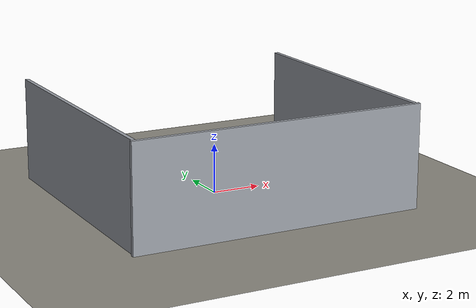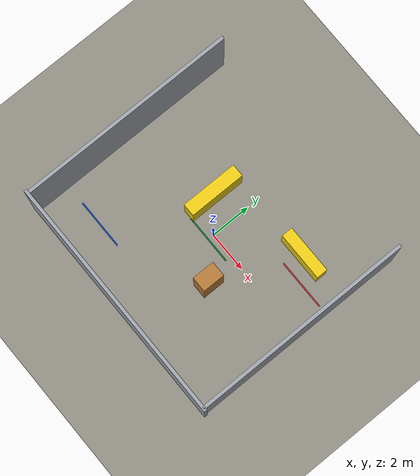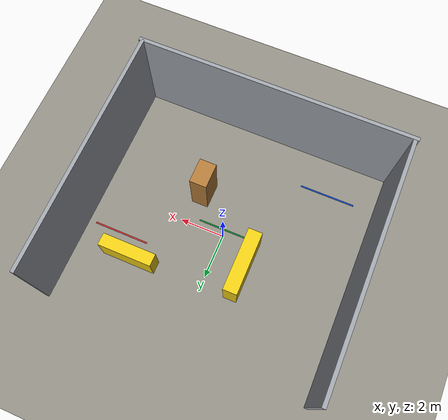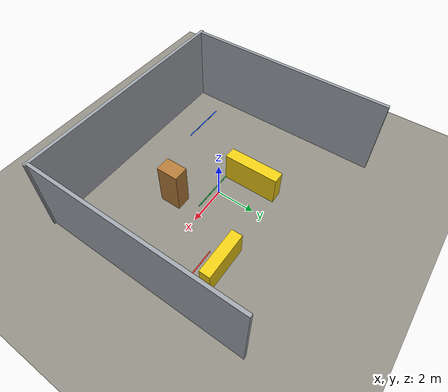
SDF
<?xml version="1.0" ?>
<sdf version="1.8">
  <world name="warehouse_multicamera_extension">
    <physics name="default_physics" type="ode">
      <max_step_size>0.001</max_step_size>
      <real_time_factor>1.0</real_time_factor>
      <real_time_update_rate>1000</real_time_update_rate>
    </physics>
    <plugin name="gz::sim::systems::Physics" filename="gz-sim-physics-system"/>
    <plugin name="gz::sim::systems::UserCommands" filename="gz-sim-user-commands-system"/>
    <plugin name="gz::sim::systems::SceneBroadcaster" filename="gz-sim-scene-broadcaster-system"/>
    <plugin name="gz::sim::systems::Contact" filename="gz-sim-contact-system"/>
    <plugin name="gz::sim::systems::Sensors" filename="gz-sim-sensors-system">
      <render_engine>ogre2</render_engine>
    </plugin>
    <gravity>0 0 -9.81</gravity>
    <scene>
      <ambient>0.58 0.58 0.58 1</ambient>
      <background>0.70 0.72 0.74 1</background>
      <shadows>true</shadows>
    </scene>

    <model name="ground_plane">
      <static>true</static>
      <link name="link">
        <collision name="collision">
          <geometry><plane><normal>0 0 1</normal><size>12.0 10.5</size></plane></geometry>
        </collision>
        <visual name="visual">
          <geometry><plane><normal>0 0 1</normal><size>12.0 10.5</size></plane></geometry>
          <material><ambient>0.56 0.55 0.51 1</ambient><diffuse>0.56 0.55 0.51 1</diffuse></material>
        </visual>
      </link>
    </model>

    <model name="warehouse_walls">
      <static>true</static>
      <link name="wall_south">
        <pose>0 -5.35 2.1 0 0 0</pose>
        <collision name="collision"><geometry><box><size>12.0 0.16 4.2</size></box></geometry></collision>
        <sensor name="contact" type="contact"><contact><collision>collision</collision></contact><update_rate>60</update_rate></sensor>
        <visual name="visual"><geometry><box><size>12.0 0.16 4.2</size></box></geometry><material><ambient>0.62 0.64 0.67 1</ambient><diffuse>0.62 0.64 0.67 1</diffuse></material></visual>
      </link>
      <link name="wall_east">
        <pose>5.85 0 2.1 0 0 0</pose>
        <collision name="collision"><geometry><box><size>0.16 10.7 4.2</size></box></geometry></collision>
        <sensor name="contact" type="contact"><contact><collision>collision</collision></contact><update_rate>60</update_rate></sensor>
        <visual name="visual"><geometry><box><size>0.16 10.7 4.2</size></box></geometry><material><ambient>0.62 0.64 0.67 1</ambient><diffuse>0.62 0.64 0.67 1</diffuse></material></visual>
      </link>
      <link name="wall_west">
        <pose>-5.85 0 2.1 0 0 0</pose>
        <collision name="collision"><geometry><box><size>0.16 10.7 4.2</size></box></geometry></collision>
        <sensor name="contact" type="contact"><contact><collision>collision</collision></contact><update_rate>60</update_rate></sensor>
        <visual name="visual"><geometry><box><size>0.16 10.7 4.2</size></box></geometry><material><ambient>0.62 0.64 0.67 1</ambient><diffuse>0.62 0.64 0.67 1</diffuse></material></visual>
      </link>
    </model>

    <model name="extension_occluders">
      <static>true</static>
      <link name="south_blind_stack_for_camera_a">
        <pose>1.55 -1.55 1.15 0 0 0</pose>
        <collision name="collision"><geometry><box><size>0.75 1.10 2.30</size></box></geometry></collision>
        <sensor name="contact" type="contact"><contact><collision>collision</collision></contact><update_rate>60</update_rate></sensor>
        <visual name="visual"><geometry><box><size>0.75 1.10 2.30</size></box></geometry><material><ambient>0.70 0.48 0.22 1</ambient><diffuse>0.70 0.48 0.22 1</diffuse></material></visual>
      </link>
      <link name="central_handover_rack">
        <pose>-1.35 1.10 0.80 0 0 0</pose>
        <collision name="collision"><geometry><box><size>0.62 2.80 1.60</size></box></geometry></collision>
        <sensor name="contact" type="contact"><contact><collision>collision</collision></contact><update_rate>60</update_rate></sensor>
        <visual name="visual"><geometry><box><size>0.62 2.80 1.60</size></box></geometry><material><ambient>0.93 0.80 0.08 1</ambient><diffuse>0.93 0.80 0.08 1</diffuse></material></visual>
      </link>
      <link name="camera_b_far_side_low_rack">
        <pose>3.30 2.45 0.65 0 0 0</pose>
        <collision name="collision"><geometry><box><size>2.40 0.55 1.30</size></box></geometry></collision>
        <sensor name="contact" type="contact"><contact><collision>collision</collision></contact><update_rate>60</update_rate></sensor>
        <visual name="visual"><geometry><box><size>2.40 0.55 1.30</size></box></geometry><material><ambient>0.93 0.80 0.08 1</ambient><diffuse>0.93 0.80 0.08 1</diffuse></material></visual>
      </link>
    </model>

    <model name="extension_region_markers">
      <static>true</static>
      <link name="camera_a_only_band">
        <pose>-3.6 -3.6 0.018 0 0 0</pose>
        <visual name="visual"><geometry><box><size>2.5 0.06 0.012</size></box></geometry><material><ambient>0.05 0.30 0.85 1</ambient><diffuse>0.05 0.30 0.85 1</diffuse></material></visual>
      </link>
      <link name="overlap_band">
        <pose>0.0 -0.3 0.018 0 0 0</pose>
        <visual name="visual"><geometry><box><size>2.5 0.06 0.012</size></box></geometry><material><ambient>0.05 0.55 0.20 1</ambient><diffuse>0.05 0.55 0.20 1</diffuse></material></visual>
      </link>
      <link name="camera_b_only_band">
        <pose>4.2 1.6 0.018 0 0 0</pose>
        <visual name="visual"><geometry><box><size>2.5 0.06 0.012</size></box></geometry><material><ambient>0.85 0.18 0.18 1</ambient><diffuse>0.85 0.18 0.18 1</diffuse></material></visual>
      </link>
    </model>

    <include>
      <name>external_camera</name>
      <uri>model://external_camera</uri>
      <pose>0.00 -5.50 4.80 0 0.92 1.5708</pose>
    </include>
    <include>
      <name>external_camera_b</name>
      <uri>model://external_camera_b</uri>
      <pose>5.50 0.10 4.80 0 0.92 3.1416</pose>
    </include>

    <light name="sun" type="directional">
      <pose>0 0 10 0 0 0</pose>
      <cast_shadows>true</cast_shadows>
      <intensity>0.72</intensity>
      <direction>-0.25 0.15 -1</direction>
    </light>
    <light name="extension_overhead_light" type="point">
      <pose>0.0 -0.5 4.2 0 0 0</pose>
      <cast_shadows>true</cast_shadows>
      <intensity>0.62</intensity>
      <attenuation><range>13</range><constant>0.45</constant><linear>0.07</linear><quadratic>0.012</quadratic></attenuation>
    </light>
  </world>
</sdf>

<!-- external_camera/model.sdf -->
<sdf version="1.6">
  <model name="external_camera">
    <static>true</static>
    <pose>0 0 0 0 0 0</pose>
    <link name="link">
      <sensor name="camera" type="camera">
        <camera>
          <horizontal_fov>1.5708</horizontal_fov> <!-- 90 degrees -->
          <image>
            <width>1280</width>
            <height>720</height>
          </image>
          <clip>
            <near>0.1</near>
            <far>100</far>
          </clip>
        </camera>
        <always_on>1</always_on>
        <update_rate>5</update_rate>
        <visualize>false</visualize>
        <topic>external_camera/image_raw</topic>
      </sensor>
      <sensor name="depth_camera" type="depth_camera">
        <camera>
          <horizontal_fov>1.5708</horizontal_fov>
          <image><width>1280</width><height>720</height><format>R_FLOAT32</format></image>
          <clip><near>0.1</near><far>100</far></clip>
        </camera>
        <always_on>0</always_on>
        <update_rate>5</update_rate>
        <visualize>false</visualize>
        <topic>external_camera/depth</topic>
      </sensor>
      <sensor name="segmentation_camera" type="segmentation">
        <camera>
          <segmentation_type>semantic</segmentation_type>
          <horizontal_fov>1.5708</horizontal_fov>
          <image>
            <width>1280</width>
            <height>720</height>
          </image>
          <clip>
            <near>0.1</near>
            <far>100</far>
          </clip>
        </camera>
        <always_on>0</always_on>
        <update_rate>1</update_rate>
        <visualize>false</visualize>
        <topic>external_camera/segmentation</topic>
      </sensor>
    </link>
  </model>
</sdf>

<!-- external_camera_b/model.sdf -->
<sdf version="1.6">
  <model name="external_camera_b">
    <static>true</static>
    <pose>0 0 0 0 0 0</pose>
    <link name="link">
      <sensor name="camera" type="camera">
        <camera>
          <horizontal_fov>1.5708</horizontal_fov>
          <image>
            <width>1280</width>
            <height>720</height>
          </image>
          <clip>
            <near>0.1</near>
            <far>100</far>
          </clip>
        </camera>
        <always_on>1</always_on>
        <update_rate>5</update_rate>
        <visualize>false</visualize>
        <topic>external_camera_b/image_raw</topic>
      </sensor>
      <sensor name="depth_camera" type="depth_camera">
        <camera>
          <horizontal_fov>1.5708</horizontal_fov>
          <image><width>1280</width><height>720</height><format>R_FLOAT32</format></image>
          <clip><near>0.1</near><far>100</far></clip>
        </camera>
        <always_on>0</always_on>
        <update_rate>5</update_rate>
        <visualize>false</visualize>
        <topic>external_camera_b/depth</topic>
      </sensor>
      <sensor name="segmentation_camera" type="segmentation">
        <camera>
          <segmentation_type>semantic</segmentation_type>
          <horizontal_fov>1.5708</horizontal_fov>
          <image>
            <width>1280</width>
            <height>720</height>
          </image>
          <clip>
            <near>0.1</near>
            <far>100</far>
          </clip>
        </camera>
        <always_on>0</always_on>
        <update_rate>1</update_rate>
        <visualize>false</visualize>
        <topic>external_camera_b/segmentation</topic>
      </sensor>
    </link>
  </model>
</sdf>
